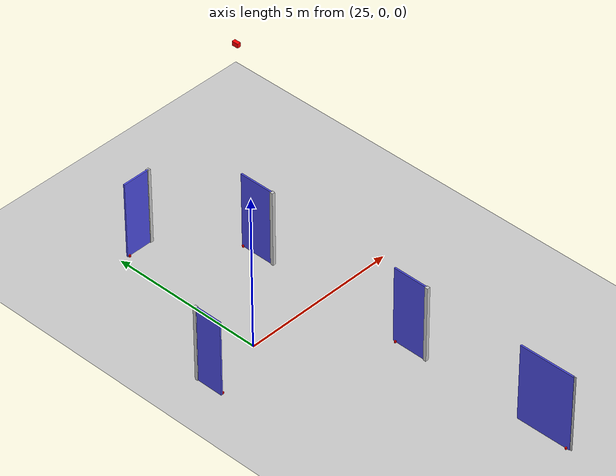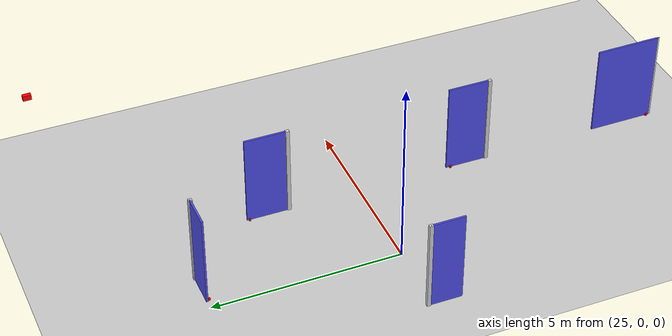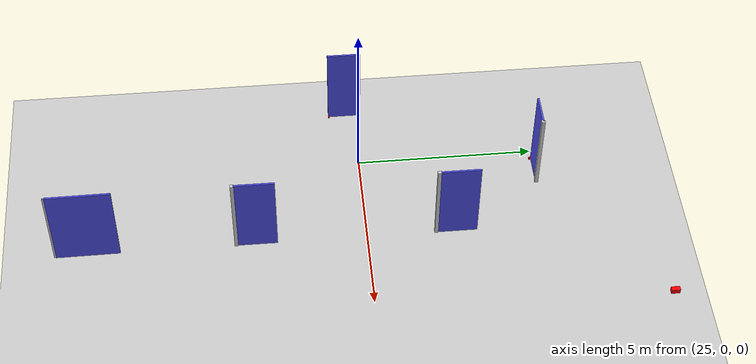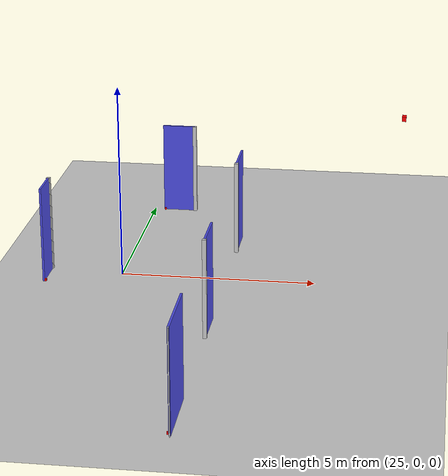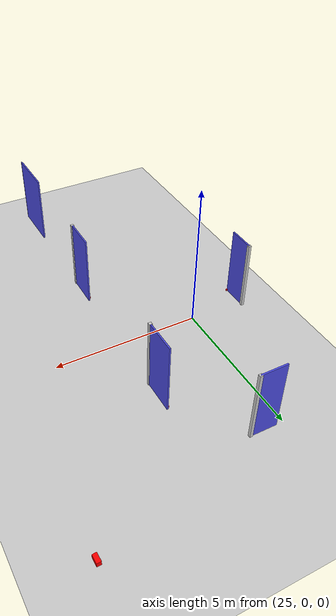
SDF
<sdf version="1.7">
 <world name="default">
  <model name="ground_plane">
   <static>1</static>
   <link name="link">
    <collision name="collision">
     <geometry><plane><normal>0 0 1</normal><size>100 100</size></plane></geometry>
     <surface><friction><ode><mu>100</mu><mu2>50</mu2></ode></friction></surface>
    </collision>
    <visual name="visual">
     <cast_shadows>0</cast_shadows>
     <geometry><plane><normal>0 0 1</normal><size>100 100</size></plane></geometry>
     <material>
      <script><uri>file://media/materials/scripts/gazebo.material</uri><name>Gazebo/Grey</name></script>
     </material>
    </visual>
   </link>
  </model>
  <model name="door_7">
   <link name="door_frame">
    <pose>0.883124 0.004995 1.25 0 -0 0.001577</pose>
    <kinematic>1</kinematic>
    <inertial>
     <inertia>
      <ixx>0.119338</ixx>
      <ixy>0</ixy>
      <ixz>0</ixz>
      <iyy>0.11855</iyy>
      <iyz>0</iyz>
      <izz>0.00116731</izz>
     </inertia>
     <mass>0.227252</mass>
    </inertial>
    <visual name="frame_visual">
     <geometry><box><size>0.1 0.022027 2.5</size></box></geometry>
     <material>
      <ambient>0.7 0.7 0.7 1</ambient>
      <diffuse>0.8 0.8 0.8 1</diffuse>
      <shader type="pixel"/>
      <script><name>ModelPreview_9::door_frame::frame_visual_MATERIAL_</name><uri>__default__</uri></script>
     </material>
    </visual>
    <collision name="frame_collision">
     <geometry><box><size>0.1 0.227244 2.5</size></box></geometry>
     <surface>
      <friction>
       <ode><mu>1</mu><mu2>1</mu2><fdir1>0 0 0</fdir1><slip1>0</slip1><slip2>0</slip2></ode>
       <torsional>
        <coefficient>1</coefficient>
        <patch_radius>0</patch_radius>
        <surface_radius>0</surface_radius>
        <use_patch_radius>1</use_patch_radius>
        <ode><slip>0</slip></ode>
       </torsional>
      </friction>
      <bounce><restitution_coefficient>0</restitution_coefficient><threshold>1e+06</threshold></bounce>
      <contact>
       <collide_without_contact>0</collide_without_contact>
       <collide_without_contact_bitmask>1</collide_without_contact_bitmask>
       <collide_bitmask>1</collide_bitmask>
       <ode>
        <soft_cfm>0</soft_cfm>
        <soft_erp>0.2</soft_erp>
        <kp>1e+13</kp>
        <kd>1</kd>
        <max_vel>0.01</max_vel>
        <min_depth>0</min_depth>
       </ode>
       <bullet>
        <split_impulse>1</split_impulse>
        <split_impulse_penetration_threshold>-0.01</split_impulse_penetration_threshold>
        <soft_cfm>0</soft_cfm>
        <soft_erp>0.2</soft_erp>
        <kp>1e+13</kp>
        <kd>1</kd>
       </bullet>
      </contact>
     </surface>
    </collision>
   </link>
   <link name="door">
    <kinematic>1</kinematic>
    <pose>0 0 1.25 0 -0 0</pose>
    <inertial>
     <inertia><ixx>1.83367</ixx><ixy>0</ixy><ixz>0</ixz><iyy>2.74098</iyy><iyz>0</iyz><izz>0.90878</izz></inertia>
     <mass>3.51924</mass>
    </inertial>
    <visual name="door_visual">
     <geometry><box><size>1.75963 0.05 2.5</size></box></geometry>
     <material>
      <ambient>0.2 0.2 0.8 1</ambient>
      <diffuse>0.3 0.3 0.9 1</diffuse>
      <shader type="pixel"/>
      <script><name>ModelPreview_9::door::door_visual_MATERIAL_</name><uri>__default__</uri></script>
     </material>
    </visual>
    <collision name="door_collision">
     <geometry><box><size>1.75963 0.05 2.5</size></box></geometry>
     <surface>
      <friction>
       <ode><mu>1</mu><mu2>1</mu2><fdir1>0 0 0</fdir1><slip1>0</slip1><slip2>0</slip2></ode>
       <torsional>
        <coefficient>1</coefficient>
        <patch_radius>0</patch_radius>
        <surface_radius>0</surface_radius>
        <use_patch_radius>1</use_patch_radius>
        <ode><slip>0</slip></ode>
       </torsional>
      </friction>
      <bounce><restitution_coefficient>0</restitution_coefficient><threshold>1e+06</threshold></bounce>
      <contact>
       <collide_without_contact>0</collide_without_contact>
       <collide_without_contact_bitmask>1</collide_without_contact_bitmask>
       <collide_bitmask>1</collide_bitmask>
       <ode>
        <soft_cfm>0</soft_cfm>
        <soft_erp>0.2</soft_erp>
        <kp>1e+13</kp>
        <kd>1</kd>
        <max_vel>0.01</max_vel>
        <min_depth>0</min_depth>
       </ode>
       <bullet>
        <split_impulse>1</split_impulse>
        <split_impulse_penetration_threshold>-0.01</split_impulse_penetration_threshold>
        <soft_cfm>0</soft_cfm>
        <soft_erp>0.2</soft_erp>
        <kp>1e+13</kp>
        <kd>1</kd>
       </bullet>
      </contact>
     </surface>
    </collision>
   </link>
   <joint name="door_joint" type="prismatic">
    <parent>door_frame</parent>
    <child>door</child>
    <axis>
     <xyz>1 0 0</xyz>
     <limit><lower>0</lower><upper>2</upper><effort>-1</effort><velocity>-1</velocity></limit>
     <dynamics>
      <spring_reference>0</spring_reference>
      <spring_stiffness>0</spring_stiffness>
      <damping>0</damping>
      <friction>0</friction>
     </dynamics>
    </axis>
    <physics>
     <ode><limit><cfm>0</cfm><erp>0.2</erp></limit><suspension><cfm>0</cfm><erp>0.2</erp></suspension></ode>
    </physics>
   </joint>
   <static>0</static>
   <plugin name="door_control_plugin" filename="libdoor_control_plugin.so">
    <door_joint>door_joint</door_joint>
    <speed>1.0</speed>
    <open_target>2</open_target>
    <close_target>0.0</close_target>
   </plugin>
   <pose>27.7212 -7.6951 0 0 0 -1.5627</pose>
  </model>
  <model name="door_8">
   <link name="door_frame">
    <pose>0.25 -1e-06 1.25 0 -0 0</pose>
    <kinematic>1</kinematic>
    <inertial>
     <inertia><ixx>1</ixx><ixy>0</ixy><ixz>0</ixz><iyy>1</iyy><iyz>0</iyz><izz>1</izz></inertia>
     <mass>1</mass>
    </inertial>
    <visual name="frame_visual">
     <geometry><box><size>0.1 0.1 2.5</size></box></geometry>
     <material>
      <ambient>0.7 0.7 0.7 1</ambient>
      <diffuse>0.8 0.8 0.8 1</diffuse>
      <shader type="pixel"><normal_map>__default__</normal_map></shader>
      <script><name>ModelPreview_1::door_frame::frame_visual_MATERIAL_</name><uri>__default__</uri></script>
      <specular>0 0 0 1</specular>
      <emissive>0 0 0 1</emissive>
     </material>
    </visual>
    <collision name="frame_collision">
     <geometry><box><size>0.1 0.1 2.5</size></box></geometry>
     <surface>
      <friction>
       <ode><mu>1</mu><mu2>1</mu2><fdir1>0 0 0</fdir1><slip1>0</slip1><slip2>0</slip2></ode>
       <torsional>
        <coefficient>1</coefficient>
        <patch_radius>0</patch_radius>
        <surface_radius>0</surface_radius>
        <use_patch_radius>1</use_patch_radius>
        <ode><slip>0</slip></ode>
       </torsional>
      </friction>
      <bounce><restitution_coefficient>0</restitution_coefficient><threshold>1e+06</threshold></bounce>
      <contact>
       <collide_without_contact>0</collide_without_contact>
       <collide_without_contact_bitmask>1</collide_without_contact_bitmask>
       <collide_bitmask>1</collide_bitmask>
       <ode>
        <soft_cfm>0</soft_cfm>
        <soft_erp>0.2</soft_erp>
        <kp>1e+13</kp>
        <kd>1</kd>
        <max_vel>0.01</max_vel>
        <min_depth>0</min_depth>
       </ode>
       <bullet>
        <split_impulse>1</split_impulse>
        <split_impulse_penetration_threshold>-0.01</split_impulse_penetration_threshold>
        <soft_cfm>0</soft_cfm>
        <soft_erp>0.2</soft_erp>
        <kp>1e+13</kp>
        <kd>1</kd>
       </bullet>
      </contact>
     </surface>
    </collision>
   </link>
   <link name="door">
    <kinematic>1</kinematic>
    <pose>-0.336184 1e-06 1.25 0 -0 0</pose>
    <inertial>
     <inertia><ixx>1.16202</ixx><ixy>0</ixy><ixz>0</ixz><iyy>1.39265</iyy><iyz>0</iyz><izz>0.231556</izz></inertia>
     <mass>2.23019</mass>
    </inertial>
    <visual name="door_visual">
     <geometry><box><size>1.11509 0.05 2.5</size></box></geometry>
     <material>
      <ambient>0.2 0.2 0.8 1</ambient>
      <diffuse>0.3 0.3 0.9 1</diffuse>
      <shader type="pixel"/>
      <script><name>ModelPreview_1::door::door_visual_MATERIAL_</name><uri>__default__</uri></script>
     </material>
    </visual>
    <collision name="door_collision">
     <geometry><box><size>1.11509 0.05 2.5</size></box></geometry>
     <surface>
      <friction>
       <ode><mu>1</mu><mu2>1</mu2><fdir1>0 0 0</fdir1><slip1>0</slip1><slip2>0</slip2></ode>
       <torsional>
        <coefficient>1</coefficient>
        <patch_radius>0</patch_radius>
        <surface_radius>0</surface_radius>
        <use_patch_radius>1</use_patch_radius>
        <ode><slip>0</slip></ode>
       </torsional>
      </friction>
      <bounce><restitution_coefficient>0</restitution_coefficient><threshold>1e+06</threshold></bounce>
      <contact>
       <collide_without_contact>0</collide_without_contact>
       <collide_without_contact_bitmask>1</collide_without_contact_bitmask>
       <collide_bitmask>1</collide_bitmask>
       <ode>
        <soft_cfm>0</soft_cfm>
        <soft_erp>0.2</soft_erp>
        <kp>1e+13</kp>
        <kd>1</kd>
        <max_vel>0.01</max_vel>
        <min_depth>0</min_depth>
       </ode>
       <bullet>
        <split_impulse>1</split_impulse>
        <split_impulse_penetration_threshold>-0.01</split_impulse_penetration_threshold>
        <soft_cfm>0</soft_cfm>
        <soft_erp>0.2</soft_erp>
        <kp>1e+13</kp>
        <kd>1</kd>
       </bullet>
      </contact>
     </surface>
    </collision>
   </link>
   <joint name="door_joint" type="prismatic">
    <parent>door_frame</parent>
    <child>door</child>
    <axis>
     <xyz>1 0 0</xyz>
     <limit><lower>0</lower><upper>2</upper><effort>-1</effort><velocity>-1</velocity></limit>
     <dynamics>
      <spring_reference>0</spring_reference>
      <spring_stiffness>0</spring_stiffness>
      <damping>0</damping>
      <friction>0</friction>
     </dynamics>
    </axis>
    <physics>
     <ode><limit><cfm>0</cfm><erp>0.2</erp></limit><suspension><cfm>0</cfm><erp>0.2</erp></suspension></ode>
    </physics>
   </joint>
   <static>0</static>
   <plugin name="door_control_plugin" filename="libdoor_control_plugin.so">
    <door_joint>door_joint</door_joint>
    <speed>1.0</speed>
    <open_target>1.0</open_target>
    <close_target>0.0</close_target>
   </plugin>
   <pose>27.7218 -3.37209 0 0 0 -1.57394</pose>
  </model>
  <model name="door_9">
   <link name="door_frame">
    <pose>0.25 0 1.25 0 -0 0</pose>
    <kinematic>1</kinematic>
    <inertial>
     <inertia><ixx>1</ixx><ixy>0</ixy><ixz>0</ixz><iyy>1</iyy><iyz>0</iyz><izz>1</izz></inertia>
     <mass>1</mass>
    </inertial>
    <visual name="frame_visual">
     <geometry><box><size>0.1 0.1 2.5</size></box></geometry>
     <material>
      <ambient>0.7 0.7 0.7 1</ambient>
      <diffuse>0.8 0.8 0.8 1</diffuse>
      <shader type="pixel"><normal_map>__default__</normal_map></shader>
      <script><name>ModelPreview_1::door_frame::frame_visual_MATERIAL_</name><uri>__default__</uri></script>
      <specular>0 0 0 1</specular>
      <emissive>0 0 0 1</emissive>
     </material>
    </visual>
    <collision name="frame_collision">
     <geometry><box><size>0.1 0.1 2.5</size></box></geometry>
     <surface>
      <friction>
       <ode><mu>1</mu><mu2>1</mu2><fdir1>0 0 0</fdir1><slip1>0</slip1><slip2>0</slip2></ode>
       <torsional>
        <coefficient>1</coefficient>
        <patch_radius>0</patch_radius>
        <surface_radius>0</surface_radius>
        <use_patch_radius>1</use_patch_radius>
        <ode><slip>0</slip></ode>
       </torsional>
      </friction>
      <bounce><restitution_coefficient>0</restitution_coefficient><threshold>1e+06</threshold></bounce>
      <contact>
       <collide_without_contact>0</collide_without_contact>
       <collide_without_contact_bitmask>1</collide_without_contact_bitmask>
       <collide_bitmask>1</collide_bitmask>
       <ode>
        <soft_cfm>0</soft_cfm>
        <soft_erp>0.2</soft_erp>
        <kp>1e+13</kp>
        <kd>1</kd>
        <max_vel>0.01</max_vel>
        <min_depth>0</min_depth>
       </ode>
       <bullet>
        <split_impulse>1</split_impulse>
        <split_impulse_penetration_threshold>-0.01</split_impulse_penetration_threshold>
        <soft_cfm>0</soft_cfm>
        <soft_erp>0.2</soft_erp>
        <kp>1e+13</kp>
        <kd>1</kd>
       </bullet>
      </contact>
     </surface>
    </collision>
   </link>
   <link name="door">
    <kinematic>1</kinematic>
    <pose>-0.194393 0 1.25 0 -0 0</pose>
    <inertial>
     <inertia>
      <ixx>0.934843</ixx>
      <ixy>0</ixy>
      <ixz>0</ixz>
      <iyy>1.05479</iyy>
      <iyz>0</iyz>
      <izz>0.120699</izz>
     </inertia>
     <mass>1.79418</mass>
    </inertial>
    <visual name="door_visual">
     <geometry><box><size>0.897089 0.05 2.5</size></box></geometry>
     <material>
      <ambient>0.2 0.2 0.8 1</ambient>
      <diffuse>0.3 0.3 0.9 1</diffuse>
      <shader type="pixel"/>
      <script><name>ModelPreview_1::door::door_visual_MATERIAL_</name><uri>__default__</uri></script>
     </material>
    </visual>
    <collision name="door_collision">
     <geometry><box><size>0.897089 0.05 2.5</size></box></geometry>
     <surface>
      <friction>
       <ode><mu>1</mu><mu2>1</mu2><fdir1>0 0 0</fdir1><slip1>0</slip1><slip2>0</slip2></ode>
       <torsional>
        <coefficient>1</coefficient>
        <patch_radius>0</patch_radius>
        <surface_radius>0</surface_radius>
        <use_patch_radius>1</use_patch_radius>
        <ode><slip>0</slip></ode>
       </torsional>
      </friction>
      <bounce><restitution_coefficient>0</restitution_coefficient><threshold>1e+06</threshold></bounce>
      <contact>
       <collide_without_contact>0</collide_without_contact>
       <collide_without_contact_bitmask>1</collide_without_contact_bitmask>
       <collide_bitmask>1</collide_bitmask>
       <ode>
        <soft_cfm>0</soft_cfm>
        <soft_erp>0.2</soft_erp>
        <kp>1e+13</kp>
        <kd>1</kd>
        <max_vel>0.01</max_vel>
        <min_depth>0</min_depth>
       </ode>
       <bullet>
        <split_impulse>1</split_impulse>
        <split_impulse_penetration_threshold>-0.01</split_impulse_penetration_threshold>
        <soft_cfm>0</soft_cfm>
        <soft_erp>0.2</soft_erp>
        <kp>1e+13</kp>
        <kd>1</kd>
       </bullet>
      </contact>
     </surface>
    </collision>
   </link>
   <joint name="door_joint" type="prismatic">
    <parent>door_frame</parent>
    <child>door</child>
    <axis>
     <xyz>1 0 0</xyz>
     <limit><lower>0</lower><upper>2</upper><effort>-1</effort><velocity>-1</velocity></limit>
     <dynamics>
      <spring_reference>0</spring_reference>
      <spring_stiffness>0</spring_stiffness>
      <damping>0</damping>
      <friction>0</friction>
     </dynamics>
    </axis>
    <physics>
     <ode><limit><cfm>0</cfm><erp>0.2</erp></limit><suspension><cfm>0</cfm><erp>0.2</erp></suspension></ode>
    </physics>
   </joint>
   <static>0</static>
   <plugin name="door_control_plugin" filename="libdoor_control_plugin.so">
    <door_joint>door_joint</door_joint>
    <speed>1.0</speed>
    <open_target>1.0</open_target>
    <close_target>0.0</close_target>
   </plugin>
   <pose>23.0987 -0.087696 0 0 -0 1.56945</pose>
  </model>
  <model name="door_10">
   <link name="door_frame">
    <pose>0.25 -1e-06 1.25 0 -0 0</pose>
    <kinematic>1</kinematic>
    <inertial>
     <inertia><ixx>1</ixx><ixy>0</ixy><ixz>0</ixz><iyy>1</iyy><iyz>0</iyz><izz>1</izz></inertia>
     <mass>1</mass>
    </inertial>
    <visual name="frame_visual">
     <geometry><box><size>0.1 0.1 2.5</size></box></geometry>
     <material>
      <ambient>0.7 0.7 0.7 1</ambient>
      <diffuse>0.8 0.8 0.8 1</diffuse>
      <shader type="pixel"><normal_map>__default__</normal_map></shader>
      <script><name>ModelPreview_1::door_frame::frame_visual_MATERIAL_</name><uri>__default__</uri></script>
      <specular>0 0 0 1</specular>
      <emissive>0 0 0 1</emissive>
     </material>
    </visual>
    <collision name="frame_collision">
     <geometry><box><size>0.1 0.1 2.5</size></box></geometry>
     <surface>
      <friction>
       <ode><mu>1</mu><mu2>1</mu2><fdir1>0 0 0</fdir1><slip1>0</slip1><slip2>0</slip2></ode>
       <torsional>
        <coefficient>1</coefficient>
        <patch_radius>0</patch_radius>
        <surface_radius>0</surface_radius>
        <use_patch_radius>1</use_patch_radius>
        <ode><slip>0</slip></ode>
       </torsional>
      </friction>
      <bounce><restitution_coefficient>0</restitution_coefficient><threshold>1e+06</threshold></bounce>
      <contact>
       <collide_without_contact>0</collide_without_contact>
       <collide_without_contact_bitmask>1</collide_without_contact_bitmask>
       <collide_bitmask>1</collide_bitmask>
       <ode>
        <soft_cfm>0</soft_cfm>
        <soft_erp>0.2</soft_erp>
        <kp>1e+13</kp>
        <kd>1</kd>
        <max_vel>0.01</max_vel>
        <min_depth>0</min_depth>
       </ode>
       <bullet>
        <split_impulse>1</split_impulse>
        <split_impulse_penetration_threshold>-0.01</split_impulse_penetration_threshold>
        <soft_cfm>0</soft_cfm>
        <soft_erp>0.2</soft_erp>
        <kp>1e+13</kp>
        <kd>1</kd>
       </bullet>
      </contact>
     </surface>
    </collision>
   </link>
   <link name="door">
    <kinematic>1</kinematic>
    <pose>-0.336184 1e-06 1.25 0 -0 0</pose>
    <inertial>
     <inertia><ixx>1.16202</ixx><ixy>0</ixy><ixz>0</ixz><iyy>1.39265</iyy><iyz>0</iyz><izz>0.231556</izz></inertia>
     <mass>2.23019</mass>
    </inertial>
    <visual name="door_visual">
     <geometry><box><size>1.11509 0.05 2.5</size></box></geometry>
     <material>
      <ambient>0.2 0.2 0.8 1</ambient>
      <diffuse>0.3 0.3 0.9 1</diffuse>
      <shader type="pixel"/>
      <script><name>ModelPreview_1::door::door_visual_MATERIAL_</name><uri>__default__</uri></script>
     </material>
    </visual>
    <collision name="door_collision">
     <geometry><box><size>1.11509 0.05 2.5</size></box></geometry>
     <surface>
      <friction>
       <ode><mu>1</mu><mu2>1</mu2><fdir1>0 0 0</fdir1><slip1>0</slip1><slip2>0</slip2></ode>
       <torsional>
        <coefficient>1</coefficient>
        <patch_radius>0</patch_radius>
        <surface_radius>0</surface_radius>
        <use_patch_radius>1</use_patch_radius>
        <ode><slip>0</slip></ode>
       </torsional>
      </friction>
      <bounce><restitution_coefficient>0</restitution_coefficient><threshold>1e+06</threshold></bounce>
      <contact>
       <collide_without_contact>0</collide_without_contact>
       <collide_without_contact_bitmask>1</collide_without_contact_bitmask>
       <collide_bitmask>1</collide_bitmask>
       <ode>
        <soft_cfm>0</soft_cfm>
        <soft_erp>0.2</soft_erp>
        <kp>1e+13</kp>
        <kd>1</kd>
        <max_vel>0.01</max_vel>
        <min_depth>0</min_depth>
       </ode>
       <bullet>
        <split_impulse>1</split_impulse>
        <split_impulse_penetration_threshold>-0.01</split_impulse_penetration_threshold>
        <soft_cfm>0</soft_cfm>
        <soft_erp>0.2</soft_erp>
        <kp>1e+13</kp>
        <kd>1</kd>
       </bullet>
      </contact>
     </surface>
    </collision>
   </link>
   <joint name="door_joint" type="prismatic">
    <parent>door_frame</parent>
    <child>door</child>
    <axis>
     <xyz>1 0 0</xyz>
     <limit><lower>0</lower><upper>2</upper><effort>-1</effort><velocity>-1</velocity></limit>
     <dynamics>
      <spring_reference>0</spring_reference>
      <spring_stiffness>0</spring_stiffness>
      <damping>0</damping>
      <friction>0</friction>
     </dynamics>
    </axis>
    <physics>
     <ode><limit><cfm>0</cfm><erp>0.2</erp></limit><suspension><cfm>0</cfm><erp>0.2</erp></suspension></ode>
    </physics>
   </joint>
   <static>0</static>
   <plugin name="door_control_plugin" filename="libdoor_control_plugin.so">
    <door_joint>door_joint</door_joint>
    <speed>1.0</speed>
    <open_target>1.0</open_target>
    <close_target>0.0</close_target>
   </plugin>
   <pose>27.7298 2.18851 0 0 0 -1.57062</pose>
  </model>
  <model name="door_11">
   <link name="door_frame">
    <pose>0.25 0 1.25 0 -0 0</pose>
    <kinematic>1</kinematic>
    <inertial>
     <inertia><ixx>1</ixx><ixy>0</ixy><ixz>0</ixz><iyy>1</iyy><iyz>0</iyz><izz>1</izz></inertia>
     <mass>1</mass>
    </inertial>
    <visual name="frame_visual">
     <geometry><box><size>0.1 0.1 2.5</size></box></geometry>
     <material>
      <ambient>0.7 0.7 0.7 1</ambient>
      <diffuse>0.8 0.8 0.8 1</diffuse>
      <shader type="pixel"><normal_map>__default__</normal_map></shader>
      <script><name>ModelPreview_1::door_frame::frame_visual_MATERIAL_</name><uri>__default__</uri></script>
      <specular>0 0 0 1</specular>
      <emissive>0 0 0 1</emissive>
     </material>
    </visual>
    <collision name="frame_collision">
     <geometry><box><size>0.1 0.1 2.5</size></box></geometry>
     <surface>
      <friction>
       <ode><mu>1</mu><mu2>1</mu2><fdir1>0 0 0</fdir1><slip1>0</slip1><slip2>0</slip2></ode>
       <torsional>
        <coefficient>1</coefficient>
        <patch_radius>0</patch_radius>
        <surface_radius>0</surface_radius>
        <use_patch_radius>1</use_patch_radius>
        <ode><slip>0</slip></ode>
       </torsional>
      </friction>
      <bounce><restitution_coefficient>0</restitution_coefficient><threshold>1e+06</threshold></bounce>
      <contact>
       <collide_without_contact>0</collide_without_contact>
       <collide_without_contact_bitmask>1</collide_without_contact_bitmask>
       <collide_bitmask>1</collide_bitmask>
       <ode>
        <soft_cfm>0</soft_cfm>
        <soft_erp>0.2</soft_erp>
        <kp>1e+13</kp>
        <kd>1</kd>
        <max_vel>0.01</max_vel>
        <min_depth>0</min_depth>
       </ode>
       <bullet>
        <split_impulse>1</split_impulse>
        <split_impulse_penetration_threshold>-0.01</split_impulse_penetration_threshold>
        <soft_cfm>0</soft_cfm>
        <soft_erp>0.2</soft_erp>
        <kp>1e+13</kp>
        <kd>1</kd>
       </bullet>
      </contact>
     </surface>
    </collision>
   </link>
   <link name="door">
    <kinematic>1</kinematic>
    <pose>-0.194393 0 1.25 0 -0 0</pose>
    <inertial>
     <inertia>
      <ixx>0.934843</ixx>
      <ixy>0</ixy>
      <ixz>0</ixz>
      <iyy>1.05479</iyy>
      <iyz>0</iyz>
      <izz>0.120699</izz>
     </inertia>
     <mass>1.79418</mass>
    </inertial>
    <visual name="door_visual">
     <geometry><box><size>0.897089 0.05 2.5</size></box></geometry>
     <material>
      <ambient>0.2 0.2 0.8 1</ambient>
      <diffuse>0.3 0.3 0.9 1</diffuse>
      <shader type="pixel"/>
      <script><name>ModelPreview_1::door::door_visual_MATERIAL_</name><uri>__default__</uri></script>
     </material>
    </visual>
    <collision name="door_collision">
     <geometry><box><size>0.897089 0.05 2.5</size></box></geometry>
     <surface>
      <friction>
       <ode><mu>1</mu><mu2>1</mu2><fdir1>0 0 0</fdir1><slip1>0</slip1><slip2>0</slip2></ode>
       <torsional>
        <coefficient>1</coefficient>
        <patch_radius>0</patch_radius>
        <surface_radius>0</surface_radius>
        <use_patch_radius>1</use_patch_radius>
        <ode><slip>0</slip></ode>
       </torsional>
      </friction>
      <bounce><restitution_coefficient>0</restitution_coefficient><threshold>1e+06</threshold></bounce>
      <contact>
       <collide_without_contact>0</collide_without_contact>
       <collide_without_contact_bitmask>1</collide_without_contact_bitmask>
       <collide_bitmask>1</collide_bitmask>
       <ode>
        <soft_cfm>0</soft_cfm>
        <soft_erp>0.2</soft_erp>
        <kp>1e+13</kp>
        <kd>1</kd>
        <max_vel>0.01</max_vel>
        <min_depth>0</min_depth>
       </ode>
       <bullet>
        <split_impulse>1</split_impulse>
        <split_impulse_penetration_threshold>-0.01</split_impulse_penetration_threshold>
        <soft_cfm>0</soft_cfm>
        <soft_erp>0.2</soft_erp>
        <kp>1e+13</kp>
        <kd>1</kd>
       </bullet>
      </contact>
     </surface>
    </collision>
   </link>
   <joint name="door_joint" type="prismatic">
    <parent>door_frame</parent>
    <child>door</child>
    <axis>
     <xyz>1 0 0</xyz>
     <limit><lower>0</lower><upper>2</upper><effort>-1</effort><velocity>-1</velocity></limit>
     <dynamics>
      <spring_reference>0</spring_reference>
      <spring_stiffness>0</spring_stiffness>
      <damping>0</damping>
      <friction>0</friction>
     </dynamics>
    </axis>
    <physics>
     <ode><limit><cfm>0</cfm><erp>0.2</erp></limit><suspension><cfm>0</cfm><erp>0.2</erp></suspension></ode>
    </physics>
   </joint>
   <static>0</static>
   <plugin name="door_control_plugin" filename="libdoor_control_plugin.so">
    <door_joint>door_joint</door_joint>
    <speed>1.0</speed>
    <open_target>1.0</open_target>
    <close_target>0.0</close_target>
   </plugin>
   <pose>25.886 5.00538 0 0 -0 0</pose>
  </model>
  <model name="Lidar_7">
   <link name="link_1">
    <inertial>
     <mass>0.00014111</mass>
     <inertia><ixx>7e-08</ixx><ixy>0</ixy><ixz>0</ixz><iyy>7e-08</iyy><iyz>0</iyz><izz>6e-08</izz></inertia>
    </inertial>
    <visual name="visual">
     <geometry><box><size>0.048286 0.048861 0.059852</size></box></geometry>
     <material>
      <lighting>1</lighting>
      <script><uri>file://media/materials/scripts/gazebo.material</uri><name>Gazebo/Grey</name></script>
      <shader type="pixel"><normal_map>__default__</normal_map></shader>
      <ambient>1 0 0 1</ambient>
      <diffuse>0.7 0.7 0.7 1</diffuse>
      <specular>0.01 0.01 0.01 1</specular>
      <emissive>0 0 0 1</emissive>
     </material>
    </visual>
    <collision name="collision">
     <geometry><box><size>0.048286 0.048861 0.059852</size></box></geometry>
     <surface>
      <friction>
       <ode><mu>1</mu><mu2>1</mu2><fdir1>0 0 0</fdir1><slip1>0</slip1><slip2>0</slip2></ode>
       <torsional>
        <coefficient>1</coefficient>
        <patch_radius>0</patch_radius>
        <surface_radius>0</surface_radius>
        <use_patch_radius>1</use_patch_radius>
        <ode><slip>0</slip></ode>
       </torsional>
      </friction>
      <bounce><restitution_coefficient>0</restitution_coefficient><threshold>1e+06</threshold></bounce>
      <contact>
       <collide_without_contact>0</collide_without_contact>
       <collide_without_contact_bitmask>1</collide_without_contact_bitmask>
       <collide_bitmask>1</collide_bitmask>
       <ode>
        <soft_cfm>0</soft_cfm>
        <soft_erp>0.2</soft_erp>
        <kp>1e+13</kp>
        <kd>1</kd>
        <max_vel>0.01</max_vel>
        <min_depth>0</min_depth>
       </ode>
       <bullet>
        <split_impulse>1</split_impulse>
        <split_impulse_penetration_threshold>-0.01</split_impulse_penetration_threshold>
        <soft_cfm>0</soft_cfm>
        <soft_erp>0.2</soft_erp>
        <kp>1e+13</kp>
        <kd>1</kd>
       </bullet>
      </contact>
     </surface>
    </collision>
   </link>
   <static>0</static>
   <pose>27.6773 -8.48092 0.029924 0.000139 5.8e-05 1.57421</pose>
  </model>
  <model name="Lidar_8">
   <link name="link_1">
    <inertial>
     <mass>0.00014111</mass>
     <inertia><ixx>7e-08</ixx><ixy>0</ixy><ixz>0</ixz><iyy>7e-08</iyy><iyz>0</iyz><izz>6e-08</izz></inertia>
    </inertial>
    <visual name="visual">
     <geometry><box><size>0.048286 0.048861 0.059852</size></box></geometry>
     <material>
      <lighting>1</lighting>
      <script><uri>file://media/materials/scripts/gazebo.material</uri><name>Gazebo/Grey</name></script>
      <shader type="pixel"><normal_map>__default__</normal_map></shader>
      <ambient>1 0 0 1</ambient>
      <diffuse>0.7 0.7 0.7 1</diffuse>
      <specular>0.01 0.01 0.01 1</specular>
      <emissive>0 0 0 1</emissive>
     </material>
    </visual>
    <collision name="collision">
     <geometry><box><size>0.048286 0.048861 0.059852</size></box></geometry>
     <surface>
      <friction>
       <ode><mu>1</mu><mu2>1</mu2><fdir1>0 0 0</fdir1><slip1>0</slip1><slip2>0</slip2></ode>
       <torsional>
        <coefficient>1</coefficient>
        <patch_radius>0</patch_radius>
        <surface_radius>0</surface_radius>
        <use_patch_radius>1</use_patch_radius>
        <ode><slip>0</slip></ode>
       </torsional>
      </friction>
      <bounce><restitution_coefficient>0</restitution_coefficient><threshold>1e+06</threshold></bounce>
      <contact>
       <collide_without_contact>0</collide_without_contact>
       <collide_without_contact_bitmask>1</collide_without_contact_bitmask>
       <collide_bitmask>1</collide_bitmask>
       <ode>
        <soft_cfm>0</soft_cfm>
        <soft_erp>0.2</soft_erp>
        <kp>1e+13</kp>
        <kd>1</kd>
        <max_vel>0.01</max_vel>
        <min_depth>0</min_depth>
       </ode>
       <bullet>
        <split_impulse>1</split_impulse>
        <split_impulse_penetration_threshold>-0.01</split_impulse_penetration_threshold>
        <soft_cfm>0</soft_cfm>
        <soft_erp>0.2</soft_erp>
        <kp>1e+13</kp>
        <kd>1</kd>
       </bullet>
      </contact>
     </surface>
    </collision>
   </link>
   <static>0</static>
   <pose>27.6682 -2.59023 0.029924 -0.000139 -5.8e-05 -1.60524</pose>
  </model>
  <model name="Lidar_9">
   <link name="link_1">
    <inertial>
     <mass>0.00014111</mass>
     <inertia><ixx>7e-08</ixx><ixy>0</ixy><ixz>0</ixz><iyy>7e-08</iyy><iyz>0</iyz><izz>6e-08</izz></inertia>
    </inertial>
    <visual name="visual">
     <geometry><box><size>0.048286 0.048861 0.059852</size></box></geometry>
     <material>
      <lighting>1</lighting>
      <script><uri>file://media/materials/scripts/gazebo.material</uri><name>Gazebo/Grey</name></script>
      <shader type="pixel"><normal_map>__default__</normal_map></shader>
      <ambient>1 0 0 1</ambient>
      <diffuse>0.7 0.7 0.7 1</diffuse>
      <specular>0.01 0.01 0.01 1</specular>
      <emissive>0 0 0 1</emissive>
     </material>
    </visual>
    <collision name="collision">
     <geometry><box><size>0.048286 0.048861 0.059852</size></box></geometry>
     <surface>
      <friction>
       <ode><mu>1</mu><mu2>1</mu2><fdir1>0 0 0</fdir1><slip1>0</slip1><slip2>0</slip2></ode>
       <torsional>
        <coefficient>1</coefficient>
        <patch_radius>0</patch_radius>
        <surface_radius>0</surface_radius>
        <use_patch_radius>1</use_patch_radius>
        <ode><slip>0</slip></ode>
       </torsional>
      </friction>
      <bounce><restitution_coefficient>0</restitution_coefficient><threshold>1e+06</threshold></bounce>
      <contact>
       <collide_without_contact>0</collide_without_contact>
       <collide_without_contact_bitmask>1</collide_without_contact_bitmask>
       <collide_bitmask>1</collide_bitmask>
       <ode>
        <soft_cfm>0</soft_cfm>
        <soft_erp>0.2</soft_erp>
        <kp>1e+13</kp>
        <kd>1</kd>
        <max_vel>0.01</max_vel>
        <min_depth>0</min_depth>
       </ode>
       <bullet>
        <split_impulse>1</split_impulse>
        <split_impulse_penetration_threshold>-0.01</split_impulse_penetration_threshold>
        <soft_cfm>0</soft_cfm>
        <soft_erp>0.2</soft_erp>
        <kp>1e+13</kp>
        <kd>1</kd>
       </bullet>
      </contact>
     </surface>
    </collision>
   </link>
   <static>0</static>
   <pose>23.1471 -0.708094 0.029926 0 -1e-06 1.56705</pose>
  </model>
  <model name="Lidar_10">
   <link name="link_1">
    <inertial>
     <mass>0.00014111</mass>
     <inertia><ixx>7e-08</ixx><ixy>0</ixy><ixz>0</ixz><iyy>7e-08</iyy><iyz>0</iyz><izz>6e-08</izz></inertia>
    </inertial>
    <visual name="visual">
     <geometry><box><size>0.048286 0.048861 0.059852</size></box></geometry>
     <material>
      <lighting>1</lighting>
      <script><uri>file://media/materials/scripts/gazebo.material</uri><name>Gazebo/Grey</name></script>
      <shader type="pixel"><normal_map>__default__</normal_map></shader>
      <ambient>1 0 0 1</ambient>
      <diffuse>0.7 0.7 0.7 1</diffuse>
      <specular>0.01 0.01 0.01 1</specular>
      <emissive>0 0 0 1</emissive>
     </material>
    </visual>
    <collision name="collision">
     <geometry><box><size>0.048286 0.048861 0.059852</size></box></geometry>
     <surface>
      <friction>
       <ode><mu>1</mu><mu2>1</mu2><fdir1>0 0 0</fdir1><slip1>0</slip1><slip2>0</slip2></ode>
       <torsional>
        <coefficient>1</coefficient>
        <patch_radius>0</patch_radius>
        <surface_radius>0</surface_radius>
        <use_patch_radius>1</use_patch_radius>
        <ode><slip>0</slip></ode>
       </torsional>
      </friction>
      <bounce><restitution_coefficient>0</restitution_coefficient><threshold>1e+06</threshold></bounce>
      <contact>
       <collide_without_contact>0</collide_without_contact>
       <collide_without_contact_bitmask>1</collide_without_contact_bitmask>
       <collide_bitmask>1</collide_bitmask>
       <ode>
        <soft_cfm>0</soft_cfm>
        <soft_erp>0.2</soft_erp>
        <kp>1e+13</kp>
        <kd>1</kd>
        <max_vel>0.01</max_vel>
        <min_depth>0</min_depth>
       </ode>
       <bullet>
        <split_impulse>1</split_impulse>
        <split_impulse_penetration_threshold>-0.01</split_impulse_penetration_threshold>
        <soft_cfm>0</soft_cfm>
        <soft_erp>0.2</soft_erp>
        <kp>1e+13</kp>
        <kd>1</kd>
       </bullet>
      </contact>
     </surface>
    </collision>
   </link>
   <static>0</static>
   <pose>27.6784 3.01753 0.029926 1e-06 -0 -1.7906</pose>
  </model>
  <model name="Lidar_11">
   <link name="link_1">
    <inertial>
     <mass>0.00014111</mass>
     <inertia><ixx>7e-08</ixx><ixy>0</ixy><ixz>0</ixz><iyy>7e-08</iyy><iyz>0</iyz><izz>6e-08</izz></inertia>
    </inertial>
    <visual name="visual">
     <geometry><box><size>0.048286 0.048861 0.059852</size></box></geometry>
     <material>
      <lighting>1</lighting>
      <script><uri>file://media/materials/scripts/gazebo.material</uri><name>Gazebo/Grey</name></script>
      <shader type="pixel"><normal_map>__default__</normal_map></shader>
      <ambient>1 0 0 1</ambient>
      <diffuse>0.7 0.7 0.7 1</diffuse>
      <specular>0.01 0.01 0.01 1</specular>
      <emissive>0 0 0 1</emissive>
     </material>
    </visual>
    <collision name="collision">
     <geometry><box><size>0.048286 0.048861 0.059852</size></box></geometry>
     <surface>
      <friction>
       <ode><mu>1</mu><mu2>1</mu2><fdir1>0 0 0</fdir1><slip1>0</slip1><slip2>0</slip2></ode>
       <torsional>
        <coefficient>1</coefficient>
        <patch_radius>0</patch_radius>
        <surface_radius>0</surface_radius>
        <use_patch_radius>1</use_patch_radius>
        <ode><slip>0</slip></ode>
       </torsional>
      </friction>
      <bounce><restitution_coefficient>0</restitution_coefficient><threshold>1e+06</threshold></bounce>
      <contact>
       <collide_without_contact>0</collide_without_contact>
       <collide_without_contact_bitmask>1</collide_without_contact_bitmask>
       <collide_bitmask>1</collide_bitmask>
       <ode>
        <soft_cfm>0</soft_cfm>
        <soft_erp>0.2</soft_erp>
        <kp>1e+13</kp>
        <kd>1</kd>
        <max_vel>0.01</max_vel>
        <min_depth>0</min_depth>
       </ode>
       <bullet>
        <split_impulse>1</split_impulse>
        <split_impulse_penetration_threshold>-0.01</split_impulse_penetration_threshold>
        <soft_cfm>0</soft_cfm>
        <soft_erp>0.2</soft_erp>
        <kp>1e+13</kp>
        <kd>1</kd>
       </bullet>
      </contact>
     </surface>
    </collision>
   </link>
   <static>0</static>
   <pose>25.2879 4.94456 0.029922 1.4e-05 0.000142 0.164355</pose>
  </model>
  <model name="Camera_6">
   <link name="link_1">
    <inertial>
     <mass>0.00014152</mass>
     <inertia><ixx>8.3e-07</ixx><ixy>0</ixy><ixz>0</ixz><iyy>4e-07</iyy><iyz>0</iyz><izz>7.7e-07</izz></inertia>
    </inertial>
    <gravity>0</gravity>
    <visual name="visual">
     <geometry><box><size>0.119276 0.225925 0.14044</size></box></geometry>
     <material>
      <lighting>1</lighting>
      <script><uri>file://media/materials/scripts/gazebo.material</uri><name>Gazebo/Grey</name></script>
      <shader type="pixel"><normal_map>__default__</normal_map></shader>
      <ambient>1 0 0 1</ambient>
      <diffuse>0.7 0.7 0.7 1</diffuse>
      <specular>0.01 0.01 0.01 1</specular>
      <emissive>0 0 0 1</emissive>
     </material>
    </visual>
    <collision name="collision">
     <geometry><box><size>0.119276 0.225925 0.14044</size></box></geometry>
     <surface>
      <friction>
       <ode><mu>1</mu><mu2>1</mu2><fdir1>0 0 0</fdir1><slip1>0</slip1><slip2>0</slip2></ode>
       <torsional>
        <coefficient>1</coefficient>
        <patch_radius>0</patch_radius>
        <surface_radius>0</surface_radius>
        <use_patch_radius>1</use_patch_radius>
        <ode><slip>0</slip></ode>
       </torsional>
      </friction>
      <bounce><restitution_coefficient>0</restitution_coefficient><threshold>1e+06</threshold></bounce>
      <contact>
       <collide_without_contact>0</collide_without_contact>
       <collide_without_contact_bitmask>1</collide_without_contact_bitmask>
       <collide_bitmask>1</collide_bitmask>
       <ode>
        <soft_cfm>0</soft_cfm>
        <soft_erp>0.2</soft_erp>
        <kp>1e+13</kp>
        <kd>1</kd>
        <max_vel>0.01</max_vel>
        <min_depth>0</min_depth>
       </ode>
       <bullet>
        <split_impulse>1</split_impulse>
        <split_impulse_penetration_threshold>-0.01</split_impulse_penetration_threshold>
        <soft_cfm>0</soft_cfm>
        <soft_erp>0.2</soft_erp>
        <kp>1e+13</kp>
        <kd>1</kd>
       </bullet>
      </contact>
     </surface>
    </collision>
    <sensor name="camera_sensor6" type="camera">
     <update_rate>30</update_rate>
     <camera>
      <horizontal_fov>2.5</horizontal_fov>
      <image><width>800</width><height>600</height><format>R8G8B8</format></image>
      <clip><near>0.1</near><far>100</far></clip>
      <distortion><k1>-0.3</k1><k2>0.1</k2><p1>0</p1><p2>0</p2></distortion>
     </camera>
     <plugin name="camera_plugin" filename="libcamera_plugin.so"/>
    </sensor>
   </link>
   <static>1</static>
   <pose>31.9371 7.43572 2.23902 0.007154 -0.030867 -3.1368</pose>
  </model>
 </world>
</sdf>
